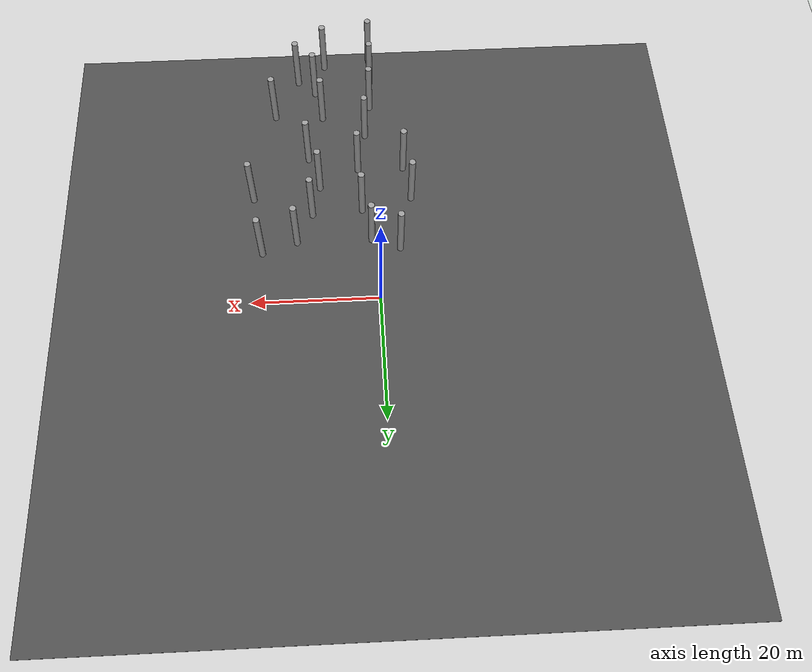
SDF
<sdf version="1.6">
 <world name="default">
  <model name="ground_plane">
   <static>1</static>
   <link name="link">
    <collision name="collision">
     <geometry><plane><normal>0 0 1</normal><size>100 100</size></plane></geometry>
     <surface><friction><ode><mu>100</mu><mu2>50</mu2></ode></friction></surface>
    </collision>
    <visual name="visual">
     <cast_shadows>0</cast_shadows>
     <geometry><plane><normal>0 0 1</normal><size>100 100</size></plane></geometry>
     <material>
      <script><uri>file://media/materials/scripts/gazebo.material</uri><name>Gazebo/Grey</name></script>
     </material>
    </visual>
   </link>
  </model>
  <model name="asphalt_plane">
   <static>1</static>
   <link name="link">
    <collision name="collision"><geometry><box><size>100 100 0.1</size></box></geometry></collision>
    <visual name="visual">
     <cast_shadows>0</cast_shadows>
     <geometry><box><size>100 100 0.1</size></box></geometry>
     <material>
      <script>
       <uri>model://asphalt_plane/materials/scripts</uri>
       <uri>model://asphalt_plane/materials/textures</uri>
       <name>vrc/asphalt</name>
      </script>
     </material>
    </visual>
   </link>
   <pose>0.078502 0.417861 0 0 -0 0</pose>
  </model>
  <model name="forest">
   <link name="link_clone_11">
    <pose>-3.02208 -7.81377 -0 0 -0 0</pose>
    <inertial>
     <mass>1000</mass>
     <inertia><ixx>0.145833</ixx><ixy>0</ixy><ixz>0</ixz><iyy>0.145833</iyy><iyz>0</iyz><izz>0.125</izz></inertia>
     <pose>0 0 5 0 -0 0</pose>
    </inertial>
    <visual name="visual">
     <geometry><cylinder><radius>0.5</radius><length>10</length></cylinder></geometry>
     <material>
      <script><name>Gazebo/Grey</name><uri>file://media/materials/scripts/gazebo.material</uri></script>
      <ambient>0.3 0.3 0.3 1</ambient>
      <diffuse>0.7 0.7 0.7 1</diffuse>
      <specular>0.01 0.01 0.01 1</specular>
      <emissive>0 0 0 1</emissive>
      <shader type="vertex"><normal_map>__default__</normal_map></shader>
     </material>
     <pose>0 0 5 0 -0 0</pose>
    </visual>
    <collision name="collision">
     <pose>0 0 5 0 -0 0</pose>
     <geometry><cylinder><radius>0.5</radius><length>10</length></cylinder></geometry>
     <surface>
      <friction>
       <ode><mu>1</mu><mu2>1</mu2><fdir1>0 0 0</fdir1><slip1>0</slip1><slip2>0</slip2></ode>
       <torsional>
        <coefficient>1</coefficient>
        <patch_radius>0</patch_radius>
        <surface_radius>0</surface_radius>
        <use_patch_radius>1</use_patch_radius>
        <ode><slip>0</slip></ode>
       </torsional>
      </friction>
      <bounce><restitution_coefficient>0</restitution_coefficient><threshold>1e+06</threshold></bounce>
      <contact>
       <collide_without_contact>0</collide_without_contact>
       <collide_without_contact_bitmask>1</collide_without_contact_bitmask>
       <collide_bitmask>1</collide_bitmask>
       <ode>
        <soft_cfm>0</soft_cfm>
        <soft_erp>0.2</soft_erp>
        <kp>1e+13</kp>
        <kd>1</kd>
        <max_vel>0.01</max_vel>
        <min_depth>0</min_depth>
       </ode>
       <bullet>
        <split_impulse>1</split_impulse>
        <split_impulse_penetration_threshold>-0.01</split_impulse_penetration_threshold>
        <soft_cfm>0</soft_cfm>
        <soft_erp>0.2</soft_erp>
        <kp>1e+13</kp>
        <kd>1</kd>
       </bullet>
      </contact>
     </surface>
    </collision>
   </link>
   <link name="link_clone_13_clone_100">
    <pose>1.72388 -30.1957 -0 0 -0 0</pose>
    <inertial>
     <mass>1000</mass>
     <inertia><ixx>0.145833</ixx><ixy>0</ixy><ixz>0</ixz><iyy>0.145833</iyy><iyz>0</iyz><izz>0.125</izz></inertia>
     <pose>0 0 5 0 -0 0</pose>
    </inertial>
    <visual name="visual">
     <geometry><cylinder><radius>0.5</radius><length>10</length></cylinder></geometry>
     <material>
      <script><name>Gazebo/Grey</name><uri>file://media/materials/scripts/gazebo.material</uri></script>
      <ambient>0.3 0.3 0.3 1</ambient>
      <diffuse>0.7 0.7 0.7 1</diffuse>
      <specular>0.01 0.01 0.01 1</specular>
      <emissive>0 0 0 1</emissive>
      <shader type="vertex"><normal_map>__default__</normal_map></shader>
     </material>
     <pose>0 0 5 0 -0 0</pose>
    </visual>
    <collision name="collision">
     <pose>0 0 5 0 -0 0</pose>
     <geometry><cylinder><radius>0.5</radius><length>10</length></cylinder></geometry>
     <surface>
      <friction>
       <ode><mu>1</mu><mu2>1</mu2><fdir1>0 0 0</fdir1><slip1>0</slip1><slip2>0</slip2></ode>
       <torsional>
        <coefficient>1</coefficient>
        <patch_radius>0</patch_radius>
        <surface_radius>0</surface_radius>
        <use_patch_radius>1</use_patch_radius>
        <ode><slip>0</slip></ode>
       </torsional>
      </friction>
      <bounce><restitution_coefficient>0</restitution_coefficient><threshold>1e+06</threshold></bounce>
      <contact>
       <collide_without_contact>0</collide_without_contact>
       <collide_without_contact_bitmask>1</collide_without_contact_bitmask>
       <collide_bitmask>1</collide_bitmask>
       <ode>
        <soft_cfm>0</soft_cfm>
        <soft_erp>0.2</soft_erp>
        <kp>1e+13</kp>
        <kd>1</kd>
        <max_vel>0.01</max_vel>
        <min_depth>0</min_depth>
       </ode>
       <bullet>
        <split_impulse>1</split_impulse>
        <split_impulse_penetration_threshold>-0.01</split_impulse_penetration_threshold>
        <soft_cfm>0</soft_cfm>
        <soft_erp>0.2</soft_erp>
        <kp>1e+13</kp>
        <kd>1</kd>
       </bullet>
      </contact>
     </surface>
    </collision>
   </link>
   <link name="link_clone_13_clone_101">
    <pose>3.1313 -23.1957 -0 0 -0 0</pose>
    <inertial>
     <mass>1000</mass>
     <inertia><ixx>0.145833</ixx><ixy>0</ixy><ixz>0</ixz><iyy>0.145833</iyy><iyz>0</iyz><izz>0.125</izz></inertia>
     <pose>0 0 5 0 -0 0</pose>
    </inertial>
    <visual name="visual">
     <geometry><cylinder><radius>0.5</radius><length>10</length></cylinder></geometry>
     <material>
      <script><name>Gazebo/Grey</name><uri>file://media/materials/scripts/gazebo.material</uri></script>
      <ambient>0.3 0.3 0.3 1</ambient>
      <diffuse>0.7 0.7 0.7 1</diffuse>
      <specular>0.01 0.01 0.01 1</specular>
      <emissive>0 0 0 1</emissive>
      <shader type="vertex"><normal_map>__default__</normal_map></shader>
     </material>
     <pose>0 0 5 0 -0 0</pose>
    </visual>
    <collision name="collision">
     <pose>0 0 5 0 -0 0</pose>
     <geometry><cylinder><radius>0.5</radius><length>10</length></cylinder></geometry>
     <surface>
      <friction>
       <ode><mu>1</mu><mu2>1</mu2><fdir1>0 0 0</fdir1><slip1>0</slip1><slip2>0</slip2></ode>
       <torsional>
        <coefficient>1</coefficient>
        <patch_radius>0</patch_radius>
        <surface_radius>0</surface_radius>
        <use_patch_radius>1</use_patch_radius>
        <ode><slip>0</slip></ode>
       </torsional>
      </friction>
      <bounce><restitution_coefficient>0</restitution_coefficient><threshold>1e+06</threshold></bounce>
      <contact>
       <collide_without_contact>0</collide_without_contact>
       <collide_without_contact_bitmask>1</collide_without_contact_bitmask>
       <collide_bitmask>1</collide_bitmask>
       <ode>
        <soft_cfm>0</soft_cfm>
        <soft_erp>0.2</soft_erp>
        <kp>1e+13</kp>
        <kd>1</kd>
        <max_vel>0.01</max_vel>
        <min_depth>0</min_depth>
       </ode>
       <bullet>
        <split_impulse>1</split_impulse>
        <split_impulse_penetration_threshold>-0.01</split_impulse_penetration_threshold>
        <soft_cfm>0</soft_cfm>
        <soft_erp>0.2</soft_erp>
        <kp>1e+13</kp>
        <kd>1</kd>
       </bullet>
      </contact>
     </surface>
    </collision>
   </link>
   <link name="link_clone_13_clone_102">
    <pose>2.72388 -15.1957 -0 0 -0 0</pose>
    <inertial>
     <mass>1000</mass>
     <inertia><ixx>0.145833</ixx><ixy>0</ixy><ixz>0</ixz><iyy>0.145833</iyy><iyz>0</iyz><izz>0.125</izz></inertia>
     <pose>0 0 5 0 -0 0</pose>
    </inertial>
    <visual name="visual">
     <geometry><cylinder><radius>0.5</radius><length>10</length></cylinder></geometry>
     <material>
      <script><name>Gazebo/Grey</name><uri>file://media/materials/scripts/gazebo.material</uri></script>
      <ambient>0.3 0.3 0.3 1</ambient>
      <diffuse>0.7 0.7 0.7 1</diffuse>
      <specular>0.01 0.01 0.01 1</specular>
      <emissive>0 0 0 1</emissive>
      <shader type="vertex"><normal_map>__default__</normal_map></shader>
     </material>
     <pose>0 0 5 0 -0 0</pose>
    </visual>
    <collision name="collision">
     <pose>0 0 5 0 -0 0</pose>
     <geometry><cylinder><radius>0.5</radius><length>10</length></cylinder></geometry>
     <surface>
      <friction>
       <ode><mu>1</mu><mu2>1</mu2><fdir1>0 0 0</fdir1><slip1>0</slip1><slip2>0</slip2></ode>
       <torsional>
        <coefficient>1</coefficient>
        <patch_radius>0</patch_radius>
        <surface_radius>0</surface_radius>
        <use_patch_radius>1</use_patch_radius>
        <ode><slip>0</slip></ode>
       </torsional>
      </friction>
      <bounce><restitution_coefficient>0</restitution_coefficient><threshold>1e+06</threshold></bounce>
      <contact>
       <collide_without_contact>0</collide_without_contact>
       <collide_without_contact_bitmask>1</collide_without_contact_bitmask>
       <collide_bitmask>1</collide_bitmask>
       <ode>
        <soft_cfm>0</soft_cfm>
        <soft_erp>0.2</soft_erp>
        <kp>1e+13</kp>
        <kd>1</kd>
        <max_vel>0.01</max_vel>
        <min_depth>0</min_depth>
       </ode>
       <bullet>
        <split_impulse>1</split_impulse>
        <split_impulse_penetration_threshold>-0.01</split_impulse_penetration_threshold>
        <soft_cfm>0</soft_cfm>
        <soft_erp>0.2</soft_erp>
        <kp>1e+13</kp>
        <kd>1</kd>
       </bullet>
      </contact>
     </surface>
    </collision>
   </link>
   <link name="link_clone_13_clone_103">
    <pose>10.7239 -14.6551 -0 0 -0 0</pose>
    <inertial>
     <mass>1000</mass>
     <inertia><ixx>0.145833</ixx><ixy>0</ixy><ixz>0</ixz><iyy>0.145833</iyy><iyz>0</iyz><izz>0.125</izz></inertia>
     <pose>0 0 5 0 -0 0</pose>
    </inertial>
    <visual name="visual">
     <geometry><cylinder><radius>0.5</radius><length>10</length></cylinder></geometry>
     <material>
      <script><name>Gazebo/Grey</name><uri>file://media/materials/scripts/gazebo.material</uri></script>
      <ambient>0.3 0.3 0.3 1</ambient>
      <diffuse>0.7 0.7 0.7 1</diffuse>
      <specular>0.01 0.01 0.01 1</specular>
      <emissive>0 0 0 1</emissive>
      <shader type="vertex"><normal_map>__default__</normal_map></shader>
     </material>
     <pose>0 0 5 0 -0 0</pose>
    </visual>
    <collision name="collision">
     <pose>0 0 5 0 -0 0</pose>
     <geometry><cylinder><radius>0.5</radius><length>10</length></cylinder></geometry>
     <surface>
      <friction>
       <ode><mu>1</mu><mu2>1</mu2><fdir1>0 0 0</fdir1><slip1>0</slip1><slip2>0</slip2></ode>
       <torsional>
        <coefficient>1</coefficient>
        <patch_radius>0</patch_radius>
        <surface_radius>0</surface_radius>
        <use_patch_radius>1</use_patch_radius>
        <ode><slip>0</slip></ode>
       </torsional>
      </friction>
      <bounce><restitution_coefficient>0</restitution_coefficient><threshold>1e+06</threshold></bounce>
      <contact>
       <collide_without_contact>0</collide_without_contact>
       <collide_without_contact_bitmask>1</collide_without_contact_bitmask>
       <collide_bitmask>1</collide_bitmask>
       <ode>
        <soft_cfm>0</soft_cfm>
        <soft_erp>0.2</soft_erp>
        <kp>1e+13</kp>
        <kd>1</kd>
        <max_vel>0.01</max_vel>
        <min_depth>0</min_depth>
       </ode>
       <bullet>
        <split_impulse>1</split_impulse>
        <split_impulse_penetration_threshold>-0.01</split_impulse_penetration_threshold>
        <soft_cfm>0</soft_cfm>
        <soft_erp>0.2</soft_erp>
        <kp>1e+13</kp>
        <kd>1</kd>
       </bullet>
      </contact>
     </surface>
    </collision>
   </link>
   <link name="link_clone_13_clone_104">
    <pose>9.42712 -19.8713 -0 0 -0 0</pose>
    <inertial>
     <mass>1000</mass>
     <inertia><ixx>0.145833</ixx><ixy>0</ixy><ixz>0</ixz><iyy>0.145833</iyy><iyz>0</iyz><izz>0.125</izz></inertia>
     <pose>0 0 5 0 -0 0</pose>
    </inertial>
    <visual name="visual">
     <geometry><cylinder><radius>0.5</radius><length>10</length></cylinder></geometry>
     <material>
      <script><name>Gazebo/Grey</name><uri>file://media/materials/scripts/gazebo.material</uri></script>
      <ambient>0.3 0.3 0.3 1</ambient>
      <diffuse>0.7 0.7 0.7 1</diffuse>
      <specular>0.01 0.01 0.01 1</specular>
      <emissive>0 0 0 1</emissive>
      <shader type="vertex"><normal_map>__default__</normal_map></shader>
     </material>
     <pose>0 0 5 0 -0 0</pose>
    </visual>
    <collision name="collision">
     <pose>0 0 5 0 -0 0</pose>
     <geometry><cylinder><radius>0.5</radius><length>10</length></cylinder></geometry>
     <surface>
      <friction>
       <ode><mu>1</mu><mu2>1</mu2><fdir1>0 0 0</fdir1><slip1>0</slip1><slip2>0</slip2></ode>
       <torsional>
        <coefficient>1</coefficient>
        <patch_radius>0</patch_radius>
        <surface_radius>0</surface_radius>
        <use_patch_radius>1</use_patch_radius>
        <ode><slip>0</slip></ode>
       </torsional>
      </friction>
      <bounce><restitution_coefficient>0</restitution_coefficient><threshold>1e+06</threshold></bounce>
      <contact>
       <collide_without_contact>0</collide_without_contact>
       <collide_without_contact_bitmask>1</collide_without_contact_bitmask>
       <collide_bitmask>1</collide_bitmask>
       <ode>
        <soft_cfm>0</soft_cfm>
        <soft_erp>0.2</soft_erp>
        <kp>1e+13</kp>
        <kd>1</kd>
        <max_vel>0.01</max_vel>
        <min_depth>0</min_depth>
       </ode>
       <bullet>
        <split_impulse>1</split_impulse>
        <split_impulse_penetration_threshold>-0.01</split_impulse_penetration_threshold>
        <soft_cfm>0</soft_cfm>
        <soft_erp>0.2</soft_erp>
        <kp>1e+13</kp>
        <kd>1</kd>
       </bullet>
      </contact>
     </surface>
    </collision>
   </link>
   <link name="link_clone_13_clone_105">
    <pose>11.1904 -25.644 -0 0 -0 0</pose>
    <inertial>
     <mass>1000</mass>
     <inertia><ixx>0.145833</ixx><ixy>0</ixy><ixz>0</ixz><iyy>0.145833</iyy><iyz>0</iyz><izz>0.125</izz></inertia>
     <pose>0 0 5 0 -0 0</pose>
    </inertial>
    <visual name="visual">
     <geometry><cylinder><radius>0.5</radius><length>10</length></cylinder></geometry>
     <material>
      <script><name>Gazebo/Grey</name><uri>file://media/materials/scripts/gazebo.material</uri></script>
      <ambient>0.3 0.3 0.3 1</ambient>
      <diffuse>0.7 0.7 0.7 1</diffuse>
      <specular>0.01 0.01 0.01 1</specular>
      <emissive>0 0 0 1</emissive>
      <shader type="vertex"><normal_map>__default__</normal_map></shader>
     </material>
     <pose>0 0 5 0 -0 0</pose>
    </visual>
    <collision name="collision">
     <pose>0 0 5 0 -0 0</pose>
     <geometry><cylinder><radius>0.5</radius><length>10</length></cylinder></geometry>
     <surface>
      <friction>
       <ode><mu>1</mu><mu2>1</mu2><fdir1>0 0 0</fdir1><slip1>0</slip1><slip2>0</slip2></ode>
       <torsional>
        <coefficient>1</coefficient>
        <patch_radius>0</patch_radius>
        <surface_radius>0</surface_radius>
        <use_patch_radius>1</use_patch_radius>
        <ode><slip>0</slip></ode>
       </torsional>
      </friction>
      <bounce><restitution_coefficient>0</restitution_coefficient><threshold>1e+06</threshold></bounce>
      <contact>
       <collide_without_contact>0</collide_without_contact>
       <collide_without_contact_bitmask>1</collide_without_contact_bitmask>
       <collide_bitmask>1</collide_bitmask>
       <ode>
        <soft_cfm>0</soft_cfm>
        <soft_erp>0.2</soft_erp>
        <kp>1e+13</kp>
        <kd>1</kd>
        <max_vel>0.01</max_vel>
        <min_depth>0</min_depth>
       </ode>
       <bullet>
        <split_impulse>1</split_impulse>
        <split_impulse_penetration_threshold>-0.01</split_impulse_penetration_threshold>
        <soft_cfm>0</soft_cfm>
        <soft_erp>0.2</soft_erp>
        <kp>1e+13</kp>
        <kd>1</kd>
       </bullet>
      </contact>
     </surface>
    </collision>
   </link>
   <link name="link_clone_13_clone_106">
    <pose>8.72388 -34.1957 -0 0 -0 0</pose>
    <inertial>
     <mass>1000</mass>
     <inertia><ixx>0.145833</ixx><ixy>0</ixy><ixz>0</ixz><iyy>0.145833</iyy><iyz>0</iyz><izz>0.125</izz></inertia>
     <pose>0 0 5 0 -0 0</pose>
    </inertial>
    <visual name="visual">
     <geometry><cylinder><radius>0.5</radius><length>10</length></cylinder></geometry>
     <material>
      <script><name>Gazebo/Grey</name><uri>file://media/materials/scripts/gazebo.material</uri></script>
      <ambient>0.3 0.3 0.3 1</ambient>
      <diffuse>0.7 0.7 0.7 1</diffuse>
      <specular>0.01 0.01 0.01 1</specular>
      <emissive>0 0 0 1</emissive>
      <shader type="vertex"><normal_map>__default__</normal_map></shader>
     </material>
     <pose>0 0 5 0 -0 0</pose>
    </visual>
    <collision name="collision">
     <pose>0 0 5 0 -0 0</pose>
     <geometry><cylinder><radius>0.5</radius><length>10</length></cylinder></geometry>
     <surface>
      <friction>
       <ode><mu>1</mu><mu2>1</mu2><fdir1>0 0 0</fdir1><slip1>0</slip1><slip2>0</slip2></ode>
       <torsional>
        <coefficient>1</coefficient>
        <patch_radius>0</patch_radius>
        <surface_radius>0</surface_radius>
        <use_patch_radius>1</use_patch_radius>
        <ode><slip>0</slip></ode>
       </torsional>
      </friction>
      <bounce><restitution_coefficient>0</restitution_coefficient><threshold>1e+06</threshold></bounce>
      <contact>
       <collide_without_contact>0</collide_without_contact>
       <collide_without_contact_bitmask>1</collide_without_contact_bitmask>
       <collide_bitmask>1</collide_bitmask>
       <ode>
        <soft_cfm>0</soft_cfm>
        <soft_erp>0.2</soft_erp>
        <kp>1e+13</kp>
        <kd>1</kd>
        <max_vel>0.01</max_vel>
        <min_depth>0</min_depth>
       </ode>
       <bullet>
        <split_impulse>1</split_impulse>
        <split_impulse_penetration_threshold>-0.01</split_impulse_penetration_threshold>
        <soft_cfm>0</soft_cfm>
        <soft_erp>0.2</soft_erp>
        <kp>1e+13</kp>
        <kd>1</kd>
       </bullet>
      </contact>
     </surface>
    </collision>
   </link>
   <link name="link_clone_13_clone_107">
    <pose>12.7239 -42.1957 -0 0 -0 0</pose>
    <inertial>
     <mass>1000</mass>
     <inertia><ixx>0.145833</ixx><ixy>0</ixy><ixz>0</ixz><iyy>0.145833</iyy><iyz>0</iyz><izz>0.125</izz></inertia>
     <pose>0 0 5 0 -0 0</pose>
    </inertial>
    <visual name="visual">
     <geometry><cylinder><radius>0.5</radius><length>10</length></cylinder></geometry>
     <material>
      <script><name>Gazebo/Grey</name><uri>file://media/materials/scripts/gazebo.material</uri></script>
      <ambient>0.3 0.3 0.3 1</ambient>
      <diffuse>0.7 0.7 0.7 1</diffuse>
      <specular>0.01 0.01 0.01 1</specular>
      <emissive>0 0 0 1</emissive>
      <shader type="vertex"><normal_map>__default__</normal_map></shader>
     </material>
     <pose>0 0 5 0 -0 0</pose>
    </visual>
    <collision name="collision">
     <pose>0 0 5 0 -0 0</pose>
     <geometry><cylinder><radius>0.5</radius><length>10</length></cylinder></geometry>
     <surface>
      <friction>
       <ode><mu>1</mu><mu2>1</mu2><fdir1>0 0 0</fdir1><slip1>0</slip1><slip2>0</slip2></ode>
       <torsional>
        <coefficient>1</coefficient>
        <patch_radius>0</patch_radius>
        <surface_radius>0</surface_radius>
        <use_patch_radius>1</use_patch_radius>
        <ode><slip>0</slip></ode>
       </torsional>
      </friction>
      <bounce><restitution_coefficient>0</restitution_coefficient><threshold>1e+06</threshold></bounce>
      <contact>
       <collide_without_contact>0</collide_without_contact>
       <collide_without_contact_bitmask>1</collide_without_contact_bitmask>
       <collide_bitmask>1</collide_bitmask>
       <ode>
        <soft_cfm>0</soft_cfm>
        <soft_erp>0.2</soft_erp>
        <kp>1e+13</kp>
        <kd>1</kd>
        <max_vel>0.01</max_vel>
        <min_depth>0</min_depth>
       </ode>
       <bullet>
        <split_impulse>1</split_impulse>
        <split_impulse_penetration_threshold>-0.01</split_impulse_penetration_threshold>
        <soft_cfm>0</soft_cfm>
        <soft_erp>0.2</soft_erp>
        <kp>1e+13</kp>
        <kd>1</kd>
       </bullet>
      </contact>
     </surface>
    </collision>
   </link>
   <link name="link_clone_13_clone_108">
    <pose>8.19096 -45.5535 -0 0 -0 0</pose>
    <inertial>
     <mass>1000</mass>
     <inertia><ixx>0.145833</ixx><ixy>0</ixy><ixz>0</ixz><iyy>0.145833</iyy><iyz>0</iyz><izz>0.125</izz></inertia>
     <pose>0 0 5 0 -0 0</pose>
    </inertial>
    <visual name="visual">
     <geometry><cylinder><radius>0.5</radius><length>10</length></cylinder></geometry>
     <material>
      <script><name>Gazebo/Grey</name><uri>file://media/materials/scripts/gazebo.material</uri></script>
      <ambient>0.3 0.3 0.3 1</ambient>
      <diffuse>0.7 0.7 0.7 1</diffuse>
      <specular>0.01 0.01 0.01 1</specular>
      <emissive>0 0 0 1</emissive>
      <shader type="vertex"><normal_map>__default__</normal_map></shader>
     </material>
     <pose>0 0 5 0 -0 0</pose>
    </visual>
    <collision name="collision">
     <pose>0 0 5 0 -0 0</pose>
     <geometry><cylinder><radius>0.5</radius><length>10</length></cylinder></geometry>
     <surface>
      <friction>
       <ode><mu>1</mu><mu2>1</mu2><fdir1>0 0 0</fdir1><slip1>0</slip1><slip2>0</slip2></ode>
       <torsional>
        <coefficient>1</coefficient>
        <patch_radius>0</patch_radius>
        <surface_radius>0</surface_radius>
        <use_patch_radius>1</use_patch_radius>
        <ode><slip>0</slip></ode>
       </torsional>
      </friction>
      <bounce><restitution_coefficient>0</restitution_coefficient><threshold>1e+06</threshold></bounce>
      <contact>
       <collide_without_contact>0</collide_without_contact>
       <collide_without_contact_bitmask>1</collide_without_contact_bitmask>
       <collide_bitmask>1</collide_bitmask>
       <ode>
        <soft_cfm>0</soft_cfm>
        <soft_erp>0.2</soft_erp>
        <kp>1e+13</kp>
        <kd>1</kd>
        <max_vel>0.01</max_vel>
        <min_depth>0</min_depth>
       </ode>
       <bullet>
        <split_impulse>1</split_impulse>
        <split_impulse_penetration_threshold>-0.01</split_impulse_penetration_threshold>
        <soft_cfm>0</soft_cfm>
        <soft_erp>0.2</soft_erp>
        <kp>1e+13</kp>
        <kd>1</kd>
       </bullet>
      </contact>
     </surface>
    </collision>
   </link>
   <link name="link_clone_13_clone_109">
    <pose>9.88383 -39.6507 -0 0 -0 0</pose>
    <inertial>
     <mass>1000</mass>
     <inertia><ixx>0.145833</ixx><ixy>0</ixy><ixz>0</ixz><iyy>0.145833</iyy><iyz>0</iyz><izz>0.125</izz></inertia>
     <pose>0 0 5 0 -0 0</pose>
    </inertial>
    <visual name="visual">
     <geometry><cylinder><radius>0.5</radius><length>10</length></cylinder></geometry>
     <material>
      <script><name>Gazebo/Grey</name><uri>file://media/materials/scripts/gazebo.material</uri></script>
      <ambient>0.3 0.3 0.3 1</ambient>
      <diffuse>0.7 0.7 0.7 1</diffuse>
      <specular>0.01 0.01 0.01 1</specular>
      <emissive>0 0 0 1</emissive>
      <shader type="vertex"><normal_map>__default__</normal_map></shader>
     </material>
     <pose>0 0 5 0 -0 0</pose>
    </visual>
    <collision name="collision">
     <pose>0 0 5 0 -0 0</pose>
     <geometry><cylinder><radius>0.5</radius><length>10</length></cylinder></geometry>
     <surface>
      <friction>
       <ode><mu>1</mu><mu2>1</mu2><fdir1>0 0 0</fdir1><slip1>0</slip1><slip2>0</slip2></ode>
       <torsional>
        <coefficient>1</coefficient>
        <patch_radius>0</patch_radius>
        <surface_radius>0</surface_radius>
        <use_patch_radius>1</use_patch_radius>
        <ode><slip>0</slip></ode>
       </torsional>
      </friction>
      <bounce><restitution_coefficient>0</restitution_coefficient><threshold>1e+06</threshold></bounce>
      <contact>
       <collide_without_contact>0</collide_without_contact>
       <collide_without_contact_bitmask>1</collide_without_contact_bitmask>
       <collide_bitmask>1</collide_bitmask>
       <ode>
        <soft_cfm>0</soft_cfm>
        <soft_erp>0.2</soft_erp>
        <kp>1e+13</kp>
        <kd>1</kd>
        <max_vel>0.01</max_vel>
        <min_depth>0</min_depth>
       </ode>
       <bullet>
        <split_impulse>1</split_impulse>
        <split_impulse_penetration_threshold>-0.01</split_impulse_penetration_threshold>
        <soft_cfm>0</soft_cfm>
        <soft_erp>0.2</soft_erp>
        <kp>1e+13</kp>
        <kd>1</kd>
       </bullet>
      </contact>
     </surface>
    </collision>
   </link>
   <link name="link_clone_13_clone_110">
    <pose>16.6587 -34.7638 -0 0 -0 0</pose>
    <inertial>
     <mass>1000</mass>
     <inertia><ixx>0.145833</ixx><ixy>0</ixy><ixz>0</ixz><iyy>0.145833</iyy><iyz>0</iyz><izz>0.125</izz></inertia>
     <pose>0 0 5 0 -0 0</pose>
    </inertial>
    <visual name="visual">
     <geometry><cylinder><radius>0.5</radius><length>10</length></cylinder></geometry>
     <material>
      <script><name>Gazebo/Grey</name><uri>file://media/materials/scripts/gazebo.material</uri></script>
      <ambient>0.3 0.3 0.3 1</ambient>
      <diffuse>0.7 0.7 0.7 1</diffuse>
      <specular>0.01 0.01 0.01 1</specular>
      <emissive>0 0 0 1</emissive>
      <shader type="vertex"><normal_map>__default__</normal_map></shader>
     </material>
     <pose>0 0 5 0 -0 0</pose>
    </visual>
    <collision name="collision">
     <pose>0 0 5 0 -0 0</pose>
     <geometry><cylinder><radius>0.5</radius><length>10</length></cylinder></geometry>
     <surface>
      <friction>
       <ode><mu>1</mu><mu2>1</mu2><fdir1>0 0 0</fdir1><slip1>0</slip1><slip2>0</slip2></ode>
       <torsional>
        <coefficient>1</coefficient>
        <patch_radius>0</patch_radius>
        <surface_radius>0</surface_radius>
        <use_patch_radius>1</use_patch_radius>
        <ode><slip>0</slip></ode>
       </torsional>
      </friction>
      <bounce><restitution_coefficient>0</restitution_coefficient><threshold>1e+06</threshold></bounce>
      <contact>
       <collide_without_contact>0</collide_without_contact>
       <collide_without_contact_bitmask>1</collide_without_contact_bitmask>
       <collide_bitmask>1</collide_bitmask>
       <ode>
        <soft_cfm>0</soft_cfm>
        <soft_erp>0.2</soft_erp>
        <kp>1e+13</kp>
        <kd>1</kd>
        <max_vel>0.01</max_vel>
        <min_depth>0</min_depth>
       </ode>
       <bullet>
        <split_impulse>1</split_impulse>
        <split_impulse_penetration_threshold>-0.01</split_impulse_penetration_threshold>
        <soft_cfm>0</soft_cfm>
        <soft_erp>0.2</soft_erp>
        <kp>1e+13</kp>
        <kd>1</kd>
       </bullet>
      </contact>
     </surface>
    </collision>
   </link>
   <link name="link_clone_13_clone_128">
    <pose>20.1936 -18.0388 -0 0 -0 0</pose>
    <inertial>
     <mass>1000</mass>
     <inertia><ixx>0.145833</ixx><ixy>0</ixy><ixz>0</ixz><iyy>0.145833</iyy><iyz>0</iyz><izz>0.125</izz></inertia>
     <pose>0 0 5 0 -0 0</pose>
    </inertial>
    <visual name="visual">
     <geometry><cylinder><radius>0.5</radius><length>10</length></cylinder></geometry>
     <material>
      <script><name>Gazebo/Grey</name><uri>file://media/materials/scripts/gazebo.material</uri></script>
      <ambient>0.3 0.3 0.3 1</ambient>
      <diffuse>0.7 0.7 0.7 1</diffuse>
      <specular>0.01 0.01 0.01 1</specular>
      <emissive>0 0 0 1</emissive>
      <shader type="vertex"><normal_map>__default__</normal_map></shader>
     </material>
     <pose>0 0 5 0 -0 0</pose>
    </visual>
    <collision name="collision">
     <pose>0 0 5 0 -0 0</pose>
     <geometry><cylinder><radius>0.5</radius><length>10</length></cylinder></geometry>
     <surface>
      <friction>
       <ode><mu>1</mu><mu2>1</mu2><fdir1>0 0 0</fdir1><slip1>0</slip1><slip2>0</slip2></ode>
       <torsional>
        <coefficient>1</coefficient>
        <patch_radius>0</patch_radius>
        <surface_radius>0</surface_radius>
        <use_patch_radius>1</use_patch_radius>
        <ode><slip>0</slip></ode>
       </torsional>
      </friction>
      <bounce><restitution_coefficient>0</restitution_coefficient><threshold>1e+06</threshold></bounce>
      <contact>
       <collide_without_contact>0</collide_without_contact>
       <collide_without_contact_bitmask>1</collide_without_contact_bitmask>
       <collide_bitmask>1</collide_bitmask>
       <ode>
        <soft_cfm>0</soft_cfm>
        <soft_erp>0.2</soft_erp>
        <kp>1e+13</kp>
        <kd>1</kd>
        <max_vel>0.01</max_vel>
        <min_depth>0</min_depth>
       </ode>
       <bullet>
        <split_impulse>1</split_impulse>
        <split_impulse_penetration_threshold>-0.01</split_impulse_penetration_threshold>
        <soft_cfm>0</soft_cfm>
        <soft_erp>0.2</soft_erp>
        <kp>1e+13</kp>
        <kd>1</kd>
       </bullet>
      </contact>
     </surface>
    </collision>
   </link>
   <link name="link_clone_13_clone_129">
    <pose>13.2467 -9.53858 -0 0 -0 0</pose>
    <inertial>
     <mass>1000</mass>
     <inertia><ixx>0.145833</ixx><ixy>0</ixy><ixz>0</ixz><iyy>0.145833</iyy><iyz>0</iyz><izz>0.125</izz></inertia>
     <pose>0 0 5 0 -0 0</pose>
    </inertial>
    <visual name="visual">
     <geometry><cylinder><radius>0.5</radius><length>10</length></cylinder></geometry>
     <material>
      <script><name>Gazebo/Grey</name><uri>file://media/materials/scripts/gazebo.material</uri></script>
      <ambient>0.3 0.3 0.3 1</ambient>
      <diffuse>0.7 0.7 0.7 1</diffuse>
      <specular>0.01 0.01 0.01 1</specular>
      <emissive>0 0 0 1</emissive>
      <shader type="vertex"><normal_map>__default__</normal_map></shader>
     </material>
     <pose>0 0 5 0 -0 0</pose>
    </visual>
    <collision name="collision">
     <pose>0 0 5 0 -0 0</pose>
     <geometry><cylinder><radius>0.5</radius><length>10</length></cylinder></geometry>
     <surface>
      <friction>
       <ode><mu>1</mu><mu2>1</mu2><fdir1>0 0 0</fdir1><slip1>0</slip1><slip2>0</slip2></ode>
       <torsional>
        <coefficient>1</coefficient>
        <patch_radius>0</patch_radius>
        <surface_radius>0</surface_radius>
        <use_patch_radius>1</use_patch_radius>
        <ode><slip>0</slip></ode>
       </torsional>
      </friction>
      <bounce><restitution_coefficient>0</restitution_coefficient><threshold>1e+06</threshold></bounce>
      <contact>
       <collide_without_contact>0</collide_without_contact>
       <collide_without_contact_bitmask>1</collide_without_contact_bitmask>
       <collide_bitmask>1</collide_bitmask>
       <ode>
        <soft_cfm>0</soft_cfm>
        <soft_erp>0.2</soft_erp>
        <kp>1e+13</kp>
        <kd>1</kd>
        <max_vel>0.01</max_vel>
        <min_depth>0</min_depth>
       </ode>
       <bullet>
        <split_impulse>1</split_impulse>
        <split_impulse_penetration_threshold>-0.01</split_impulse_penetration_threshold>
        <soft_cfm>0</soft_cfm>
        <soft_erp>0.2</soft_erp>
        <kp>1e+13</kp>
        <kd>1</kd>
       </bullet>
      </contact>
     </surface>
    </collision>
   </link>
   <link name="link_clone_13_clone_130">
    <pose>18.7239 -7.7241 -0 0 -0 0</pose>
    <inertial>
     <mass>1000</mass>
     <inertia><ixx>0.145833</ixx><ixy>0</ixy><ixz>0</ixz><iyy>0.145833</iyy><iyz>0</iyz><izz>0.125</izz></inertia>
     <pose>0 0 5 0 -0 0</pose>
    </inertial>
    <visual name="visual">
     <geometry><cylinder><radius>0.5</radius><length>10</length></cylinder></geometry>
     <material>
      <script><name>Gazebo/Grey</name><uri>file://media/materials/scripts/gazebo.material</uri></script>
      <ambient>0.3 0.3 0.3 1</ambient>
      <diffuse>0.7 0.7 0.7 1</diffuse>
      <specular>0.01 0.01 0.01 1</specular>
      <emissive>0 0 0 1</emissive>
      <shader type="vertex"><normal_map>__default__</normal_map></shader>
     </material>
     <pose>0 0 5 0 -0 0</pose>
    </visual>
    <collision name="collision">
     <pose>0 0 5 0 -0 0</pose>
     <geometry><cylinder><radius>0.5</radius><length>10</length></cylinder></geometry>
     <surface>
      <friction>
       <ode><mu>1</mu><mu2>1</mu2><fdir1>0 0 0</fdir1><slip1>0</slip1><slip2>0</slip2></ode>
       <torsional>
        <coefficient>1</coefficient>
        <patch_radius>0</patch_radius>
        <surface_radius>0</surface_radius>
        <use_patch_radius>1</use_patch_radius>
        <ode><slip>0</slip></ode>
       </torsional>
      </friction>
      <bounce><restitution_coefficient>0</restitution_coefficient><threshold>1e+06</threshold></bounce>
      <contact>
       <collide_without_contact>0</collide_without_contact>
       <collide_without_contact_bitmask>1</collide_without_contact_bitmask>
       <collide_bitmask>1</collide_bitmask>
       <ode>
        <soft_cfm>0</soft_cfm>
        <soft_erp>0.2</soft_erp>
        <kp>1e+13</kp>
        <kd>1</kd>
        <max_vel>0.01</max_vel>
        <min_depth>0</min_depth>
       </ode>
       <bullet>
        <split_impulse>1</split_impulse>
        <split_impulse_penetration_threshold>-0.01</split_impulse_penetration_threshold>
        <soft_cfm>0</soft_cfm>
        <soft_erp>0.2</soft_erp>
        <kp>1e+13</kp>
        <kd>1</kd>
       </bullet>
      </contact>
     </surface>
    </collision>
   </link>
   <link name="link_clone_13_clone_143">
    <pose>1.42373 -9.55034 -0 0 -0 0</pose>
    <inertial>
     <mass>1000</mass>
     <inertia><ixx>0.145833</ixx><ixy>0</ixy><ixz>0</ixz><iyy>0.145833</iyy><iyz>0</iyz><izz>0.125</izz></inertia>
     <pose>0 0 5 0 -0 0</pose>
    </inertial>
    <visual name="visual">
     <geometry><cylinder><radius>0.5</radius><length>10</length></cylinder></geometry>
     <material>
      <script><name>Gazebo/Grey</name><uri>file://media/materials/scripts/gazebo.material</uri></script>
      <ambient>0.3 0.3 0.3 1</ambient>
      <diffuse>0.7 0.7 0.7 1</diffuse>
      <specular>0.01 0.01 0.01 1</specular>
      <emissive>0 0 0 1</emissive>
      <shader type="vertex"><normal_map>__default__</normal_map></shader>
     </material>
     <pose>0 0 5 0 -0 0</pose>
    </visual>
    <collision name="collision">
     <pose>0 0 5 0 -0 0</pose>
     <geometry><cylinder><radius>0.5</radius><length>10</length></cylinder></geometry>
     <surface>
      <friction>
       <ode><mu>1</mu><mu2>1</mu2><fdir1>0 0 0</fdir1><slip1>0</slip1><slip2>0</slip2></ode>
       <torsional>
        <coefficient>1</coefficient>
        <patch_radius>0</patch_radius>
        <surface_radius>0</surface_radius>
        <use_patch_radius>1</use_patch_radius>
        <ode><slip>0</slip></ode>
       </torsional>
      </friction>
      <bounce><restitution_coefficient>0</restitution_coefficient><threshold>1e+06</threshold></bounce>
      <contact>
       <collide_without_contact>0</collide_without_contact>
       <collide_without_contact_bitmask>1</collide_without_contact_bitmask>
       <collide_bitmask>1</collide_bitmask>
       <ode>
        <soft_cfm>0</soft_cfm>
        <soft_erp>0.2</soft_erp>
        <kp>1e+13</kp>
        <kd>1</kd>
        <max_vel>0.01</max_vel>
        <min_depth>0</min_depth>
       </ode>
       <bullet>
        <split_impulse>1</split_impulse>
        <split_impulse_penetration_threshold>-0.01</split_impulse_penetration_threshold>
        <soft_cfm>0</soft_cfm>
        <soft_erp>0.2</soft_erp>
        <kp>1e+13</kp>
        <kd>1</kd>
       </bullet>
      </contact>
     </surface>
    </collision>
   </link>
   <link name="link_clone_13_clone_38">
    <pose>-5.27612 -17.1957 -0 0 -0 0</pose>
    <inertial>
     <mass>1000</mass>
     <inertia><ixx>0.145833</ixx><ixy>0</ixy><ixz>0</ixz><iyy>0.145833</iyy><iyz>0</iyz><izz>0.125</izz></inertia>
     <pose>0 0 5 0 -0 0</pose>
    </inertial>
    <visual name="visual">
     <geometry><cylinder><radius>0.5</radius><length>10</length></cylinder></geometry>
     <material>
      <script><name>Gazebo/Grey</name><uri>file://media/materials/scripts/gazebo.material</uri></script>
      <ambient>0.3 0.3 0.3 1</ambient>
      <diffuse>0.7 0.7 0.7 1</diffuse>
      <specular>0.01 0.01 0.01 1</specular>
      <emissive>0 0 0 1</emissive>
      <shader type="vertex"><normal_map>__default__</normal_map></shader>
     </material>
     <pose>0 0 5 0 -0 0</pose>
    </visual>
    <collision name="collision">
     <pose>0 0 5 0 -0 0</pose>
     <geometry><cylinder><radius>0.5</radius><length>10</length></cylinder></geometry>
     <surface>
      <friction>
       <ode><mu>1</mu><mu2>1</mu2><fdir1>0 0 0</fdir1><slip1>0</slip1><slip2>0</slip2></ode>
       <torsional>
        <coefficient>1</coefficient>
        <patch_radius>0</patch_radius>
        <surface_radius>0</surface_radius>
        <use_patch_radius>1</use_patch_radius>
        <ode><slip>0</slip></ode>
       </torsional>
      </friction>
      <bounce><restitution_coefficient>0</restitution_coefficient><threshold>1e+06</threshold></bounce>
      <contact>
       <collide_without_contact>0</collide_without_contact>
       <collide_without_contact_bitmask>1</collide_without_contact_bitmask>
       <collide_bitmask>1</collide_bitmask>
       <ode>
        <soft_cfm>0</soft_cfm>
        <soft_erp>0.2</soft_erp>
        <kp>1e+13</kp>
        <kd>1</kd>
        <max_vel>0.01</max_vel>
        <min_depth>0</min_depth>
       </ode>
       <bullet>
        <split_impulse>1</split_impulse>
        <split_impulse_penetration_threshold>-0.01</split_impulse_penetration_threshold>
        <soft_cfm>0</soft_cfm>
        <soft_erp>0.2</soft_erp>
        <kp>1e+13</kp>
        <kd>1</kd>
       </bullet>
      </contact>
     </surface>
    </collision>
   </link>
   <link name="link_clone_13_clone_39">
    <pose>-4.27612 -23.1957 -0 0 -0 0</pose>
    <inertial>
     <mass>1000</mass>
     <inertia><ixx>0.145833</ixx><ixy>0</ixy><ixz>0</ixz><iyy>0.145833</iyy><iyz>0</iyz><izz>0.125</izz></inertia>
     <pose>0 0 5 0 -0 0</pose>
    </inertial>
    <visual name="visual">
     <geometry><cylinder><radius>0.5</radius><length>10</length></cylinder></geometry>
     <material>
      <script><name>Gazebo/Grey</name><uri>file://media/materials/scripts/gazebo.material</uri></script>
      <ambient>0.3 0.3 0.3 1</ambient>
      <diffuse>0.7 0.7 0.7 1</diffuse>
      <specular>0.01 0.01 0.01 1</specular>
      <emissive>0 0 0 1</emissive>
      <shader type="vertex"><normal_map>__default__</normal_map></shader>
     </material>
     <pose>0 0 5 0 -0 0</pose>
    </visual>
    <collision name="collision">
     <pose>0 0 5 0 -0 0</pose>
     <geometry><cylinder><radius>0.5</radius><length>10</length></cylinder></geometry>
     <surface>
      <friction>
       <ode><mu>1</mu><mu2>1</mu2><fdir1>0 0 0</fdir1><slip1>0</slip1><slip2>0</slip2></ode>
       <torsional>
        <coefficient>1</coefficient>
        <patch_radius>0</patch_radius>
        <surface_radius>0</surface_radius>
        <use_patch_radius>1</use_patch_radius>
        <ode><slip>0</slip></ode>
       </torsional>
      </friction>
      <bounce><restitution_coefficient>0</restitution_coefficient><threshold>1e+06</threshold></bounce>
      <contact>
       <collide_without_contact>0</collide_without_contact>
       <collide_without_contact_bitmask>1</collide_without_contact_bitmask>
       <collide_bitmask>1</collide_bitmask>
       <ode>
        <soft_cfm>0</soft_cfm>
        <soft_erp>0.2</soft_erp>
        <kp>1e+13</kp>
        <kd>1</kd>
        <max_vel>0.01</max_vel>
        <min_depth>0</min_depth>
       </ode>
       <bullet>
        <split_impulse>1</split_impulse>
        <split_impulse_penetration_threshold>-0.01</split_impulse_penetration_threshold>
        <soft_cfm>0</soft_cfm>
        <soft_erp>0.2</soft_erp>
        <kp>1e+13</kp>
        <kd>1</kd>
       </bullet>
      </contact>
     </surface>
    </collision>
   </link>
   <link name="link_clone_13_clone_97">
    <pose>0.49818 -46.6343 -0 0 -0 0</pose>
    <inertial>
     <mass>1000</mass>
     <inertia><ixx>0.145833</ixx><ixy>0</ixy><ixz>0</ixz><iyy>0.145833</iyy><iyz>0</iyz><izz>0.125</izz></inertia>
     <pose>0 0 5 0 -0 0</pose>
    </inertial>
    <visual name="visual">
     <geometry><cylinder><radius>0.5</radius><length>10</length></cylinder></geometry>
     <material>
      <script><name>Gazebo/Grey</name><uri>file://media/materials/scripts/gazebo.material</uri></script>
      <ambient>0.3 0.3 0.3 1</ambient>
      <diffuse>0.7 0.7 0.7 1</diffuse>
      <specular>0.01 0.01 0.01 1</specular>
      <emissive>0 0 0 1</emissive>
      <shader type="vertex"><normal_map>__default__</normal_map></shader>
     </material>
     <pose>0 0 5 0 -0 0</pose>
    </visual>
    <collision name="collision">
     <pose>0 0 5 0 -0 0</pose>
     <geometry><cylinder><radius>0.5</radius><length>10</length></cylinder></geometry>
     <surface>
      <friction>
       <ode><mu>1</mu><mu2>1</mu2><fdir1>0 0 0</fdir1><slip1>0</slip1><slip2>0</slip2></ode>
       <torsional>
        <coefficient>1</coefficient>
        <patch_radius>0</patch_radius>
        <surface_radius>0</surface_radius>
        <use_patch_radius>1</use_patch_radius>
        <ode><slip>0</slip></ode>
       </torsional>
      </friction>
      <bounce><restitution_coefficient>0</restitution_coefficient><threshold>1e+06</threshold></bounce>
      <contact>
       <collide_without_contact>0</collide_without_contact>
       <collide_without_contact_bitmask>1</collide_without_contact_bitmask>
       <collide_bitmask>1</collide_bitmask>
       <ode>
        <soft_cfm>0</soft_cfm>
        <soft_erp>0.2</soft_erp>
        <kp>1e+13</kp>
        <kd>1</kd>
        <max_vel>0.01</max_vel>
        <min_depth>0</min_depth>
       </ode>
       <bullet>
        <split_impulse>1</split_impulse>
        <split_impulse_penetration_threshold>-0.01</split_impulse_penetration_threshold>
        <soft_cfm>0</soft_cfm>
        <soft_erp>0.2</soft_erp>
        <kp>1e+13</kp>
        <kd>1</kd>
       </bullet>
      </contact>
     </surface>
    </collision>
   </link>
   <link name="link_clone_13_clone_98">
    <pose>0.467773 -41.6038 -0 0 -0 0</pose>
    <inertial>
     <mass>1000</mass>
     <inertia><ixx>0.145833</ixx><ixy>0</ixy><ixz>0</ixz><iyy>0.145833</iyy><iyz>0</iyz><izz>0.125</izz></inertia>
     <pose>0 0 5 0 -0 0</pose>
    </inertial>
    <visual name="visual">
     <geometry><cylinder><radius>0.5</radius><length>10</length></cylinder></geometry>
     <material>
      <script><name>Gazebo/Grey</name><uri>file://media/materials/scripts/gazebo.material</uri></script>
      <ambient>0.3 0.3 0.3 1</ambient>
      <diffuse>0.7 0.7 0.7 1</diffuse>
      <specular>0.01 0.01 0.01 1</specular>
      <emissive>0 0 0 1</emissive>
      <shader type="vertex"><normal_map>__default__</normal_map></shader>
     </material>
     <pose>0 0 5 0 -0 0</pose>
    </visual>
    <collision name="collision">
     <pose>0 0 5 0 -0 0</pose>
     <geometry><cylinder><radius>0.5</radius><length>10</length></cylinder></geometry>
     <surface>
      <friction>
       <ode><mu>1</mu><mu2>1</mu2><fdir1>0 0 0</fdir1><slip1>0</slip1><slip2>0</slip2></ode>
       <torsional>
        <coefficient>1</coefficient>
        <patch_radius>0</patch_radius>
        <surface_radius>0</surface_radius>
        <use_patch_radius>1</use_patch_radius>
        <ode><slip>0</slip></ode>
       </torsional>
      </friction>
      <bounce><restitution_coefficient>0</restitution_coefficient><threshold>1e+06</threshold></bounce>
      <contact>
       <collide_without_contact>0</collide_without_contact>
       <collide_without_contact_bitmask>1</collide_without_contact_bitmask>
       <collide_bitmask>1</collide_bitmask>
       <ode>
        <soft_cfm>0</soft_cfm>
        <soft_erp>0.2</soft_erp>
        <kp>1e+13</kp>
        <kd>1</kd>
        <max_vel>0.01</max_vel>
        <min_depth>0</min_depth>
       </ode>
       <bullet>
        <split_impulse>1</split_impulse>
        <split_impulse_penetration_threshold>-0.01</split_impulse_penetration_threshold>
        <soft_cfm>0</soft_cfm>
        <soft_erp>0.2</soft_erp>
        <kp>1e+13</kp>
        <kd>1</kd>
       </bullet>
      </contact>
     </surface>
    </collision>
   </link>
   <link name="link_clone_13_clone_99">
    <pose>0.723881 -36.1957 -0 0 -0 0</pose>
    <inertial>
     <mass>1000</mass>
     <inertia><ixx>0.145833</ixx><ixy>0</ixy><ixz>0</ixz><iyy>0.145833</iyy><iyz>0</iyz><izz>0.125</izz></inertia>
     <pose>0 0 5 0 -0 0</pose>
    </inertial>
    <visual name="visual">
     <geometry><cylinder><radius>0.5</radius><length>10</length></cylinder></geometry>
     <material>
      <script><name>Gazebo/Grey</name><uri>file://media/materials/scripts/gazebo.material</uri></script>
      <ambient>0.3 0.3 0.3 1</ambient>
      <diffuse>0.7 0.7 0.7 1</diffuse>
      <specular>0.01 0.01 0.01 1</specular>
      <emissive>0 0 0 1</emissive>
      <shader type="vertex"><normal_map>__default__</normal_map></shader>
     </material>
     <pose>0 0 5 0 -0 0</pose>
    </visual>
    <collision name="collision">
     <pose>0 0 5 0 -0 0</pose>
     <geometry><cylinder><radius>0.5</radius><length>10</length></cylinder></geometry>
     <surface>
      <friction>
       <ode><mu>1</mu><mu2>1</mu2><fdir1>0 0 0</fdir1><slip1>0</slip1><slip2>0</slip2></ode>
       <torsional>
        <coefficient>1</coefficient>
        <patch_radius>0</patch_radius>
        <surface_radius>0</surface_radius>
        <use_patch_radius>1</use_patch_radius>
        <ode><slip>0</slip></ode>
       </torsional>
      </friction>
      <bounce><restitution_coefficient>0</restitution_coefficient><threshold>1e+06</threshold></bounce>
      <contact>
       <collide_without_contact>0</collide_without_contact>
       <collide_without_contact_bitmask>1</collide_without_contact_bitmask>
       <collide_bitmask>1</collide_bitmask>
       <ode>
        <soft_cfm>0</soft_cfm>
        <soft_erp>0.2</soft_erp>
        <kp>1e+13</kp>
        <kd>1</kd>
        <max_vel>0.01</max_vel>
        <min_depth>0</min_depth>
       </ode>
       <bullet>
        <split_impulse>1</split_impulse>
        <split_impulse_penetration_threshold>-0.01</split_impulse_penetration_threshold>
        <soft_cfm>0</soft_cfm>
        <soft_erp>0.2</soft_erp>
        <kp>1e+13</kp>
        <kd>1</kd>
       </bullet>
      </contact>
     </surface>
    </collision>
   </link>
   <static>1</static>
   <pose>-0.461627 -0.993358 0 0 -0 0</pose>
  </model>
 </world>
</sdf>
